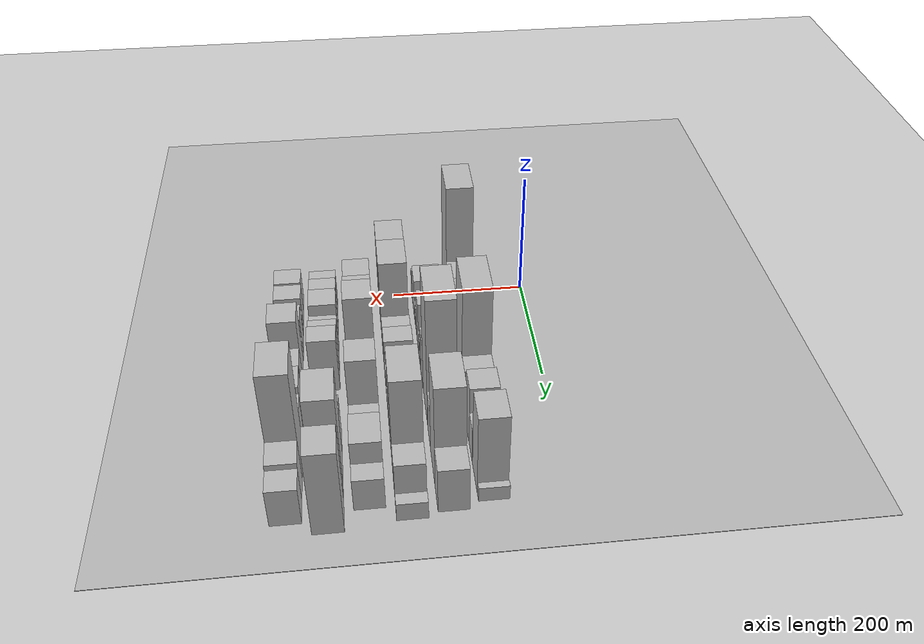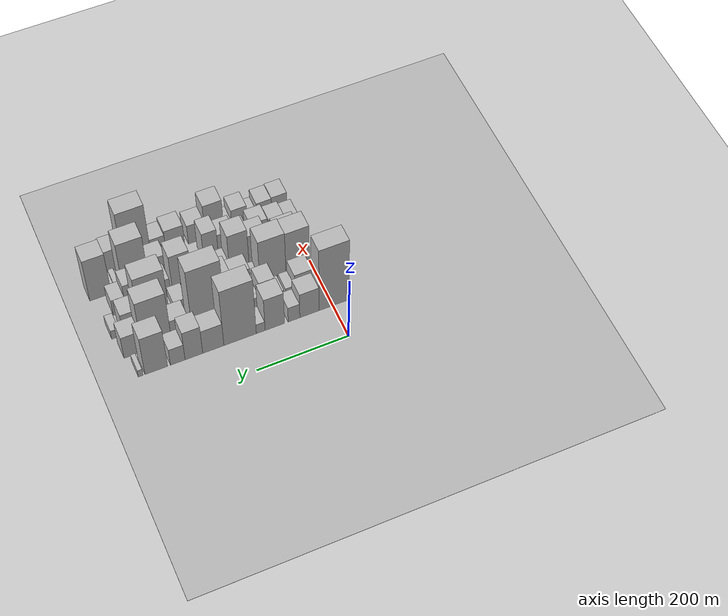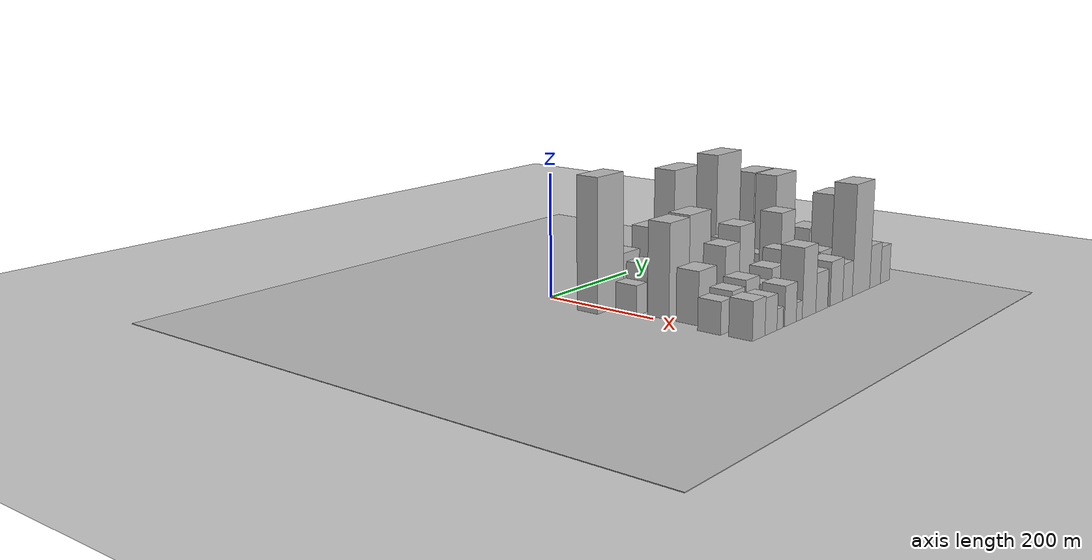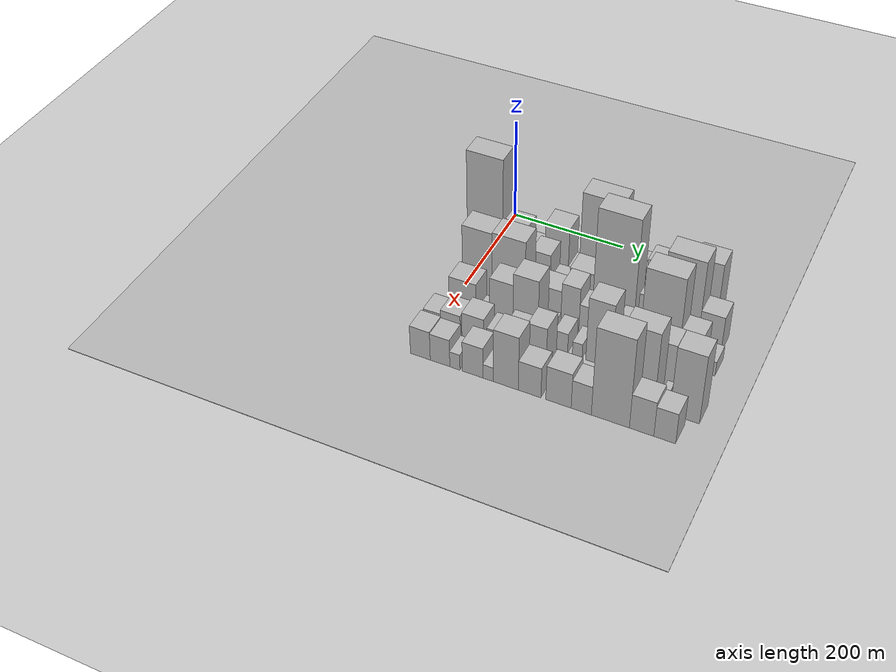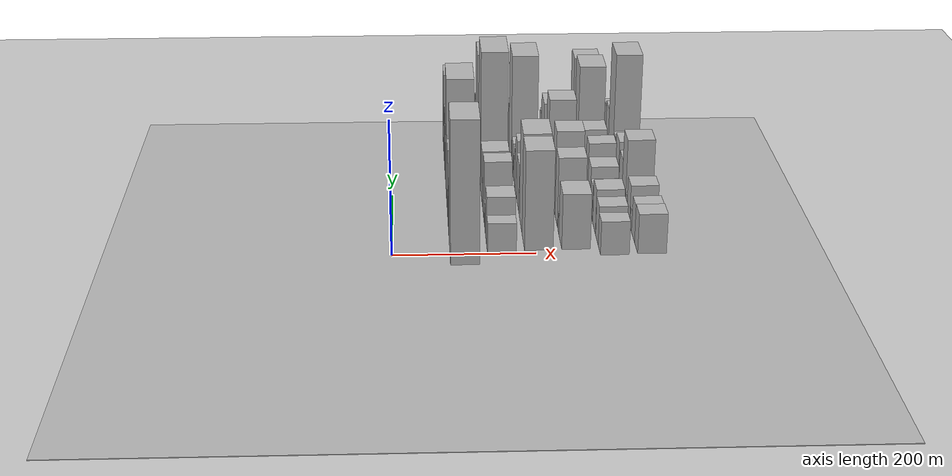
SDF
<sdf version="1.6">
 <world name="default">
  <include><name>ground_plane_1</name><uri>model://HANNAS_ground_plane</uri></include>
  <include>
   <name>ground_plane_2</name>
   <uri>model://HANNAS_ground_plane</uri>
   <pose>100 0 0  0 0 0</pose>
  </include>
  <model name="building_23">
   <static>1</static>
   <pose>100.0000 -1.6300 0 0.000000 0.000000 0.000000</pose>
   <link name="link">
    <pose>0 0 106.50 0 0 0</pose>
    <collision name="collision"><geometry><box><size>40.0000 65.4329 213.0000</size></box></geometry></collision>
    <visual name="visual">
     <cast_shadows>0</cast_shadows>
     <geometry><box><size>40.0000 65.4329 213.0000</size></box></geometry>
     <material>
      <script>
       <uri>model://HANNAS_wall/materials/scripts</uri>
       <uri>model://HANNAS_wall/materials/textures</uri>
       <name>vrc/HANNAS_wall</name>
      </script>
     </material>
    </visual>
   </link>
  </model>
  <model name="building_24">
   <static>1</static>
   <pose>100.0000 52.3423 0 0.000000 0.000000 0.000000</pose>
   <link name="link">
    <pose>0 0 42.00 0 0 0</pose>
    <collision name="collision"><geometry><box><size>40.0000 42.5116 84.0000</size></box></geometry></collision>
    <visual name="visual">
     <cast_shadows>0</cast_shadows>
     <geometry><box><size>40.0000 42.5116 84.0000</size></box></geometry>
     <material>
      <script>
       <uri>model://HANNAS_wall/materials/scripts</uri>
       <uri>model://HANNAS_wall/materials/textures</uri>
       <name>vrc/HANNAS_wall</name>
      </script>
     </material>
    </visual>
   </link>
  </model>
  <model name="building_25">
   <static>1</static>
   <pose>100.0000 86.3968 0 0.000000 0.000000 0.000000</pose>
   <link name="link">
    <pose>0 0 25.50 0 0 0</pose>
    <collision name="collision"><geometry><box><size>40.0000 25.5975 51.0000</size></box></geometry></collision>
    <visual name="visual">
     <cast_shadows>0</cast_shadows>
     <geometry><box><size>40.0000 25.5975 51.0000</size></box></geometry>
     <material>
      <script>
       <uri>model://HANNAS_wall/materials/scripts</uri>
       <uri>model://HANNAS_wall/materials/textures</uri>
       <name>vrc/HANNAS_wall</name>
      </script>
     </material>
    </visual>
   </link>
  </model>
  <model name="building_26">
   <static>1</static>
   <pose>100.0000 128.4170 0 0.000000 0.000000 0.000000</pose>
   <link name="link">
    <pose>0 0 55.50 0 0 0</pose>
    <collision name="collision"><geometry><box><size>40.0000 42.4429 111.0000</size></box></geometry></collision>
    <visual name="visual">
     <cast_shadows>0</cast_shadows>
     <geometry><box><size>40.0000 42.4429 111.0000</size></box></geometry>
     <material>
      <script>
       <uri>model://HANNAS_wall/materials/scripts</uri>
       <uri>model://HANNAS_wall/materials/textures</uri>
       <name>vrc/HANNAS_wall</name>
      </script>
     </material>
    </visual>
   </link>
  </model>
  <model name="building_27">
   <static>1</static>
   <pose>100.0000 159.2440 0 0.000000 0.000000 0.000000</pose>
   <link name="link">
    <pose>0 0 16.50 0 0 0</pose>
    <collision name="collision"><geometry><box><size>40.0000 19.2112 33.0000</size></box></geometry></collision>
    <visual name="visual">
     <cast_shadows>0</cast_shadows>
     <geometry><box><size>40.0000 19.2112 33.0000</size></box></geometry>
     <material>
      <script>
       <uri>model://HANNAS_wall/materials/scripts</uri>
       <uri>model://HANNAS_wall/materials/textures</uri>
       <name>vrc/HANNAS_wall</name>
      </script>
     </material>
    </visual>
   </link>
  </model>
  <model name="building_28">
   <static>1</static>
   <pose>100.0000 203.8309 0 0.000000 0.000000 0.000000</pose>
   <link name="link">
    <pose>0 0 97.50 0 0 0</pose>
    <collision name="collision"><geometry><box><size>40.0000 69.9627 195.0000</size></box></geometry></collision>
    <visual name="visual">
     <cast_shadows>0</cast_shadows>
     <geometry><box><size>40.0000 69.9627 195.0000</size></box></geometry>
     <material>
      <script>
       <uri>model://HANNAS_wall/materials/scripts</uri>
       <uri>model://HANNAS_wall/materials/textures</uri>
       <name>vrc/HANNAS_wall</name>
      </script>
     </material>
    </visual>
   </link>
  </model>
  <model name="building_29">
   <static>1</static>
   <pose>100.0000 261.5322 0 0.000000 0.000000 0.000000</pose>
   <link name="link">
    <pose>0 0 40.50 0 0 0</pose>
    <collision name="collision"><geometry><box><size>40.0000 45.4399 81.0000</size></box></geometry></collision>
    <visual name="visual">
     <cast_shadows>0</cast_shadows>
     <geometry><box><size>40.0000 45.4399 81.0000</size></box></geometry>
     <material>
      <script>
       <uri>model://HANNAS_wall/materials/scripts</uri>
       <uri>model://HANNAS_wall/materials/textures</uri>
       <name>vrc/HANNAS_wall</name>
      </script>
     </material>
    </visual>
   </link>
  </model>
  <model name="building_30">
   <static>1</static>
   <pose>100.0000 303.1188 0 0.000000 0.000000 0.000000</pose>
   <link name="link">
    <pose>0 0 49.50 0 0 0</pose>
    <collision name="collision"><geometry><box><size>40.0000 37.7334 99.0000</size></box></geometry></collision>
    <visual name="visual">
     <cast_shadows>0</cast_shadows>
     <geometry><box><size>40.0000 37.7334 99.0000</size></box></geometry>
     <material>
      <script>
       <uri>model://HANNAS_wall/materials/scripts</uri>
       <uri>model://HANNAS_wall/materials/textures</uri>
       <name>vrc/HANNAS_wall</name>
      </script>
     </material>
    </visual>
   </link>
  </model>
  <model name="building_31">
   <static>1</static>
   <pose>100.0000 337.5328 0 0.000000 0.000000 0.000000</pose>
   <link name="link">
    <pose>0 0 28.50 0 0 0</pose>
    <collision name="collision"><geometry><box><size>40.0000 31.0945 57.0000</size></box></geometry></collision>
    <visual name="visual">
     <cast_shadows>0</cast_shadows>
     <geometry><box><size>40.0000 31.0945 57.0000</size></box></geometry>
     <material>
      <script>
       <uri>model://HANNAS_wall/materials/scripts</uri>
       <uri>model://HANNAS_wall/materials/textures</uri>
       <name>vrc/HANNAS_wall</name>
      </script>
     </material>
    </visual>
   </link>
  </model>
  <model name="building_32">
   <static>1</static>
   <pose>100.0000 383.0558 0 0.000000 0.000000 0.000000</pose>
   <link name="link">
    <pose>0 0 66.00 0 0 0</pose>
    <collision name="collision"><geometry><box><size>40.0000 47.9517 132.0000</size></box></geometry></collision>
    <visual name="visual">
     <cast_shadows>0</cast_shadows>
     <geometry><box><size>40.0000 47.9517 132.0000</size></box></geometry>
     <material>
      <script>
       <uri>model://HANNAS_wall/materials/scripts</uri>
       <uri>model://HANNAS_wall/materials/textures</uri>
       <name>vrc/HANNAS_wall</name>
      </script>
     </material>
    </visual>
   </link>
  </model>
  <model name="building_33">
   <static>1</static>
   <pose>100.0000 415.9658 0 0.000000 0.000000 0.000000</pose>
   <link name="link">
    <pose>0 0 12.00 0 0 0</pose>
    <collision name="collision"><geometry><box><size>40.0000 9.8683 24.0000</size></box></geometry></collision>
    <visual name="visual">
     <cast_shadows>0</cast_shadows>
     <geometry><box><size>40.0000 9.8683 24.0000</size></box></geometry>
     <material>
      <script>
       <uri>model://HANNAS_wall/materials/scripts</uri>
       <uri>model://HANNAS_wall/materials/textures</uri>
       <name>vrc/HANNAS_wall</name>
      </script>
     </material>
    </visual>
   </link>
  </model>
  <model name="building_68">
   <static>1</static>
   <pose>152.0000 9.2155 0 0.000000 0.000000 0.000000</pose>
   <link name="link">
    <pose>0 0 24.00 0 0 0</pose>
    <collision name="collision"><geometry><box><size>40.0000 27.9302 48.0000</size></box></geometry></collision>
    <visual name="visual">
     <cast_shadows>0</cast_shadows>
     <geometry><box><size>40.0000 27.9302 48.0000</size></box></geometry>
     <material>
      <script>
       <uri>model://HANNAS_wall/materials/scripts</uri>
       <uri>model://HANNAS_wall/materials/textures</uri>
       <name>vrc/HANNAS_wall</name>
      </script>
     </material>
    </visual>
   </link>
  </model>
  <model name="building_69">
   <static>1</static>
   <pose>152.0000 42.9285 0 0.000000 0.000000 0.000000</pose>
   <link name="link">
    <pose>0 0 37.50 0 0 0</pose>
    <collision name="collision"><geometry><box><size>40.0000 39.4956 75.0000</size></box></geometry></collision>
    <visual name="visual">
     <cast_shadows>0</cast_shadows>
     <geometry><box><size>40.0000 39.4956 75.0000</size></box></geometry>
     <material>
      <script>
       <uri>model://HANNAS_wall/materials/scripts</uri>
       <uri>model://HANNAS_wall/materials/textures</uri>
       <name>vrc/HANNAS_wall</name>
      </script>
     </material>
    </visual>
   </link>
  </model>
  <model name="building_70">
   <static>1</static>
   <pose>152.0000 72.7786 0 0.000000 0.000000 0.000000</pose>
   <link name="link">
    <pose>0 0 19.50 0 0 0</pose>
    <collision name="collision"><geometry><box><size>40.0000 20.2046 39.0000</size></box></geometry></collision>
    <visual name="visual">
     <cast_shadows>0</cast_shadows>
     <geometry><box><size>40.0000 20.2046 39.0000</size></box></geometry>
     <material>
      <script>
       <uri>model://HANNAS_wall/materials/scripts</uri>
       <uri>model://HANNAS_wall/materials/textures</uri>
       <name>vrc/HANNAS_wall</name>
      </script>
     </material>
    </visual>
   </link>
  </model>
  <model name="building_71">
   <static>1</static>
   <pose>152.0000 95.4151 0 0.000000 0.000000 0.000000</pose>
   <link name="link">
    <pose>0 0 18.00 0 0 0</pose>
    <collision name="collision"><geometry><box><size>40.0000 19.0684 36.0000</size></box></geometry></collision>
    <visual name="visual">
     <cast_shadows>0</cast_shadows>
     <geometry><box><size>40.0000 19.0684 36.0000</size></box></geometry>
     <material>
      <script>
       <uri>model://HANNAS_wall/materials/scripts</uri>
       <uri>model://HANNAS_wall/materials/textures</uri>
       <name>vrc/HANNAS_wall</name>
      </script>
     </material>
    </visual>
   </link>
  </model>
  <model name="building_72">
   <static>1</static>
   <pose>152.0000 122.2607 0 0.000000 0.000000 0.000000</pose>
   <link name="link">
    <pose>0 0 46.50 0 0 0</pose>
    <collision name="collision"><geometry><box><size>40.0000 34.6228 93.0000</size></box></geometry></collision>
    <visual name="visual">
     <cast_shadows>0</cast_shadows>
     <geometry><box><size>40.0000 34.6228 93.0000</size></box></geometry>
     <material>
      <script>
       <uri>model://HANNAS_wall/materials/scripts</uri>
       <uri>model://HANNAS_wall/materials/textures</uri>
       <name>vrc/HANNAS_wall</name>
      </script>
     </material>
    </visual>
   </link>
  </model>
  <model name="building_73">
   <static>1</static>
   <pose>152.0000 151.7682 0 0.000000 0.000000 0.000000</pose>
   <link name="link">
    <pose>0 0 22.50 0 0 0</pose>
    <collision name="collision"><geometry><box><size>40.0000 24.3922 45.0000</size></box></geometry></collision>
    <visual name="visual">
     <cast_shadows>0</cast_shadows>
     <geometry><box><size>40.0000 24.3922 45.0000</size></box></geometry>
     <material>
      <script>
       <uri>model://HANNAS_wall/materials/scripts</uri>
       <uri>model://HANNAS_wall/materials/textures</uri>
       <name>vrc/HANNAS_wall</name>
      </script>
     </material>
    </visual>
   </link>
  </model>
  <model name="building_74">
   <static>1</static>
   <pose>152.0000 193.7684 0 0.000000 0.000000 0.000000</pose>
   <link name="link">
    <pose>0 0 40.50 0 0 0</pose>
    <collision name="collision"><geometry><box><size>40.0000 41.6083 81.0000</size></box></geometry></collision>
    <visual name="visual">
     <cast_shadows>0</cast_shadows>
     <geometry><box><size>40.0000 41.6083 81.0000</size></box></geometry>
     <material>
      <script>
       <uri>model://HANNAS_wall/materials/scripts</uri>
       <uri>model://HANNAS_wall/materials/textures</uri>
       <name>vrc/HANNAS_wall</name>
      </script>
     </material>
    </visual>
   </link>
  </model>
  <model name="building_75">
   <static>1</static>
   <pose>152.0000 250.3038 0 0.000000 0.000000 0.000000</pose>
   <link name="link">
    <pose>0 0 109.50 0 0 0</pose>
    <collision name="collision"><geometry><box><size>40.0000 71.4624 219.0000</size></box></geometry></collision>
    <visual name="visual">
     <cast_shadows>0</cast_shadows>
     <geometry><box><size>40.0000 71.4624 219.0000</size></box></geometry>
     <material>
      <script>
       <uri>model://HANNAS_wall/materials/scripts</uri>
       <uri>model://HANNAS_wall/materials/textures</uri>
       <name>vrc/HANNAS_wall</name>
      </script>
     </material>
    </visual>
   </link>
  </model>
  <model name="building_76">
   <static>1</static>
   <pose>152.0000 311.4444 0 0.000000 0.000000 0.000000</pose>
   <link name="link">
    <pose>0 0 36.00 0 0 0</pose>
    <collision name="collision"><geometry><box><size>40.0000 38.8188 72.0000</size></box></geometry></collision>
    <visual name="visual">
     <cast_shadows>0</cast_shadows>
     <geometry><box><size>40.0000 38.8188 72.0000</size></box></geometry>
     <material>
      <script>
       <uri>model://HANNAS_wall/materials/scripts</uri>
       <uri>model://HANNAS_wall/materials/textures</uri>
       <name>vrc/HANNAS_wall</name>
      </script>
     </material>
    </visual>
   </link>
  </model>
  <model name="building_77">
   <static>1</static>
   <pose>152.0000 362.1558 0 0.000000 0.000000 0.000000</pose>
   <link name="link">
    <pose>0 0 87.00 0 0 0</pose>
    <collision name="collision"><geometry><box><size>40.0000 62.6039 174.0000</size></box></geometry></collision>
    <visual name="visual">
     <cast_shadows>0</cast_shadows>
     <geometry><box><size>40.0000 62.6039 174.0000</size></box></geometry>
     <material>
      <script>
       <uri>model://HANNAS_wall/materials/scripts</uri>
       <uri>model://HANNAS_wall/materials/textures</uri>
       <name>vrc/HANNAS_wall</name>
      </script>
     </material>
    </visual>
   </link>
  </model>
  <model name="building_78">
   <static>1</static>
   <pose>152.0000 412.8408 0 0.000000 0.000000 0.000000</pose>
   <link name="link">
    <pose>0 0 37.50 0 0 0</pose>
    <collision name="collision"><geometry><box><size>40.0000 38.7662 75.0000</size></box></geometry></collision>
    <visual name="visual">
     <cast_shadows>0</cast_shadows>
     <geometry><box><size>40.0000 38.7662 75.0000</size></box></geometry>
     <material>
      <script>
       <uri>model://HANNAS_wall/materials/scripts</uri>
       <uri>model://HANNAS_wall/materials/textures</uri>
       <name>vrc/HANNAS_wall</name>
      </script>
     </material>
    </visual>
   </link>
  </model>
  <model name="building_116">
   <static>1</static>
   <pose>204.0000 33.9878 0 0.000000 0.000000 0.000000</pose>
   <link name="link">
    <pose>0 0 75.00 0 0 0</pose>
    <collision name="collision"><geometry><box><size>40.0000 52.7865 150.0000</size></box></geometry></collision>
    <visual name="visual">
     <cast_shadows>0</cast_shadows>
     <geometry><box><size>40.0000 52.7865 150.0000</size></box></geometry>
     <material>
      <script>
       <uri>model://HANNAS_wall/materials/scripts</uri>
       <uri>model://HANNAS_wall/materials/textures</uri>
       <name>vrc/HANNAS_wall</name>
      </script>
     </material>
    </visual>
   </link>
  </model>
  <model name="building_117">
   <static>1</static>
   <pose>204.0000 89.3117 0 0.000000 0.000000 0.000000</pose>
   <link name="link">
    <pose>0 0 76.50 0 0 0</pose>
    <collision name="collision"><geometry><box><size>40.0000 57.8612 153.0000</size></box></geometry></collision>
    <visual name="visual">
     <cast_shadows>0</cast_shadows>
     <geometry><box><size>40.0000 57.8612 153.0000</size></box></geometry>
     <material>
      <script>
       <uri>model://HANNAS_wall/materials/scripts</uri>
       <uri>model://HANNAS_wall/materials/textures</uri>
       <name>vrc/HANNAS_wall</name>
      </script>
     </material>
    </visual>
   </link>
  </model>
  <model name="building_118">
   <static>1</static>
   <pose>204.0000 127.9586 0 0.000000 0.000000 0.000000</pose>
   <link name="link">
    <pose>0 0 18.00 0 0 0</pose>
    <collision name="collision"><geometry><box><size>40.0000 19.4326 36.0000</size></box></geometry></collision>
    <visual name="visual">
     <cast_shadows>0</cast_shadows>
     <geometry><box><size>40.0000 19.4326 36.0000</size></box></geometry>
     <material>
      <script>
       <uri>model://HANNAS_wall/materials/scripts</uri>
       <uri>model://HANNAS_wall/materials/textures</uri>
       <name>vrc/HANNAS_wall</name>
      </script>
     </material>
    </visual>
   </link>
  </model>
  <model name="building_119">
   <static>1</static>
   <pose>204.0000 159.4800 0 0.000000 0.000000 0.000000</pose>
   <link name="link">
    <pose>0 0 37.50 0 0 0</pose>
    <collision name="collision"><geometry><box><size>40.0000 43.6103 75.0000</size></box></geometry></collision>
    <visual name="visual">
     <cast_shadows>0</cast_shadows>
     <geometry><box><size>40.0000 43.6103 75.0000</size></box></geometry>
     <material>
      <script>
       <uri>model://HANNAS_wall/materials/scripts</uri>
       <uri>model://HANNAS_wall/materials/textures</uri>
       <name>vrc/HANNAS_wall</name>
      </script>
     </material>
    </visual>
   </link>
  </model>
  <model name="building_120">
   <static>1</static>
   <pose>204.0000 196.9815 0 0.000000 0.000000 0.000000</pose>
   <link name="link">
    <pose>0 0 46.50 0 0 0</pose>
    <collision name="collision"><geometry><box><size>40.0000 31.3926 93.0000</size></box></geometry></collision>
    <visual name="visual">
     <cast_shadows>0</cast_shadows>
     <geometry><box><size>40.0000 31.3926 93.0000</size></box></geometry>
     <material>
      <script>
       <uri>model://HANNAS_wall/materials/scripts</uri>
       <uri>model://HANNAS_wall/materials/textures</uri>
       <name>vrc/HANNAS_wall</name>
      </script>
     </material>
    </visual>
   </link>
  </model>
  <model name="building_121">
   <static>1</static>
   <pose>204.0000 228.0705 0 0.000000 0.000000 0.000000</pose>
   <link name="link">
    <pose>0 0 30.00 0 0 0</pose>
    <collision name="collision"><geometry><box><size>40.0000 30.7855 60.0000</size></box></geometry></collision>
    <visual name="visual">
     <cast_shadows>0</cast_shadows>
     <geometry><box><size>40.0000 30.7855 60.0000</size></box></geometry>
     <material>
      <script>
       <uri>model://HANNAS_wall/materials/scripts</uri>
       <uri>model://HANNAS_wall/materials/textures</uri>
       <name>vrc/HANNAS_wall</name>
      </script>
     </material>
    </visual>
   </link>
  </model>
  <model name="building_122">
   <static>1</static>
   <pose>204.0000 254.6792 0 0.000000 0.000000 0.000000</pose>
   <link name="link">
    <pose>0 0 19.50 0 0 0</pose>
    <collision name="collision"><geometry><box><size>40.0000 22.4319 39.0000</size></box></geometry></collision>
    <visual name="visual">
     <cast_shadows>0</cast_shadows>
     <geometry><box><size>40.0000 22.4319 39.0000</size></box></geometry>
     <material>
      <script>
       <uri>model://HANNAS_wall/materials/scripts</uri>
       <uri>model://HANNAS_wall/materials/textures</uri>
       <name>vrc/HANNAS_wall</name>
      </script>
     </material>
    </visual>
   </link>
  </model>
  <model name="building_123">
   <static>1</static>
   <pose>204.0000 270.3292 0 0.000000 0.000000 0.000000</pose>
   <link name="link">
    <pose>0 0 9.00 0 0 0</pose>
    <collision name="collision"><geometry><box><size>40.0000 8.8683 18.0000</size></box></geometry></collision>
    <visual name="visual">
     <cast_shadows>0</cast_shadows>
     <geometry><box><size>40.0000 8.8683 18.0000</size></box></geometry>
     <material>
      <script>
       <uri>model://HANNAS_wall/materials/scripts</uri>
       <uri>model://HANNAS_wall/materials/textures</uri>
       <name>vrc/HANNAS_wall</name>
      </script>
     </material>
    </visual>
   </link>
  </model>
  <model name="building_124">
   <static>1</static>
   <pose>204.0000 289.6165 0 0.000000 0.000000 0.000000</pose>
   <link name="link">
    <pose>0 0 25.50 0 0 0</pose>
    <collision name="collision"><geometry><box><size>40.0000 29.7063 51.0000</size></box></geometry></collision>
    <visual name="visual">
     <cast_shadows>0</cast_shadows>
     <geometry><box><size>40.0000 29.7063 51.0000</size></box></geometry>
     <material>
      <script>
       <uri>model://HANNAS_wall/materials/scripts</uri>
       <uri>model://HANNAS_wall/materials/textures</uri>
       <name>vrc/HANNAS_wall</name>
      </script>
     </material>
    </visual>
   </link>
  </model>
  <model name="building_125">
   <static>1</static>
   <pose>204.0000 309.6186 0 0.000000 0.000000 0.000000</pose>
   <link name="link">
    <pose>0 0 12.00 0 0 0</pose>
    <collision name="collision"><geometry><box><size>40.0000 10.2978 24.0000</size></box></geometry></collision>
    <visual name="visual">
     <cast_shadows>0</cast_shadows>
     <geometry><box><size>40.0000 10.2978 24.0000</size></box></geometry>
     <material>
      <script>
       <uri>model://HANNAS_wall/materials/scripts</uri>
       <uri>model://HANNAS_wall/materials/textures</uri>
       <name>vrc/HANNAS_wall</name>
      </script>
     </material>
    </visual>
   </link>
  </model>
  <model name="building_126">
   <static>1</static>
   <pose>204.0000 346.9822 0 0.000000 0.000000 0.000000</pose>
   <link name="link">
    <pose>0 0 88.50 0 0 0</pose>
    <collision name="collision"><geometry><box><size>40.0000 64.4294 177.0000</size></box></geometry></collision>
    <visual name="visual">
     <cast_shadows>0</cast_shadows>
     <geometry><box><size>40.0000 64.4294 177.0000</size></box></geometry>
     <material>
      <script>
       <uri>model://HANNAS_wall/materials/scripts</uri>
       <uri>model://HANNAS_wall/materials/textures</uri>
       <name>vrc/HANNAS_wall</name>
      </script>
     </material>
    </visual>
   </link>
  </model>
  <model name="building_127">
   <static>1</static>
   <pose>204.0000 397.3503 0 0.000000 0.000000 0.000000</pose>
   <link name="link">
    <pose>0 0 36.00 0 0 0</pose>
    <collision name="collision"><geometry><box><size>40.0000 36.3067 72.0000</size></box></geometry></collision>
    <visual name="visual">
     <cast_shadows>0</cast_shadows>
     <geometry><box><size>40.0000 36.3067 72.0000</size></box></geometry>
     <material>
      <script>
       <uri>model://HANNAS_wall/materials/scripts</uri>
       <uri>model://HANNAS_wall/materials/textures</uri>
       <name>vrc/HANNAS_wall</name>
      </script>
     </material>
    </visual>
   </link>
  </model>
  <model name="building_128">
   <static>1</static>
   <pose>204.0000 431.2287 0 0.000000 0.000000 0.000000</pose>
   <link name="link">
    <pose>0 0 15.00 0 0 0</pose>
    <collision name="collision"><geometry><box><size>40.0000 17.4501 30.0000</size></box></geometry></collision>
    <visual name="visual">
     <cast_shadows>0</cast_shadows>
     <geometry><box><size>40.0000 17.4501 30.0000</size></box></geometry>
     <material>
      <script>
       <uri>model://HANNAS_wall/materials/scripts</uri>
       <uri>model://HANNAS_wall/materials/textures</uri>
       <name>vrc/HANNAS_wall</name>
      </script>
     </material>
    </visual>
   </link>
  </model>
  <model name="building_161">
   <static>1</static>
   <pose>256.0000 32.8199 0 0.000000 0.000000 0.000000</pose>
   <link name="link">
    <pose>0 0 42.00 0 0 0</pose>
    <collision name="collision"><geometry><box><size>40.0000 47.6721 84.0000</size></box></geometry></collision>
    <visual name="visual">
     <cast_shadows>0</cast_shadows>
     <geometry><box><size>40.0000 47.6721 84.0000</size></box></geometry>
     <material>
      <script>
       <uri>model://HANNAS_wall/materials/scripts</uri>
       <uri>model://HANNAS_wall/materials/textures</uri>
       <name>vrc/HANNAS_wall</name>
      </script>
     </material>
    </visual>
   </link>
  </model>
  <model name="building_162">
   <static>1</static>
   <pose>256.0000 64.5256 0 0.000000 0.000000 0.000000</pose>
   <link name="link">
    <pose>0 0 15.00 0 0 0</pose>
    <collision name="collision"><geometry><box><size>40.0000 15.7392 30.0000</size></box></geometry></collision>
    <visual name="visual">
     <cast_shadows>0</cast_shadows>
     <geometry><box><size>40.0000 15.7392 30.0000</size></box></geometry>
     <material>
      <script>
       <uri>model://HANNAS_wall/materials/scripts</uri>
       <uri>model://HANNAS_wall/materials/textures</uri>
       <name>vrc/HANNAS_wall</name>
      </script>
     </material>
    </visual>
   </link>
  </model>
  <model name="building_163">
   <static>1</static>
   <pose>256.0000 100.6425 0 0.000000 0.000000 0.000000</pose>
   <link name="link">
    <pose>0 0 54.00 0 0 0</pose>
    <collision name="collision"><geometry><box><size>40.0000 40.4947 108.0000</size></box></geometry></collision>
    <visual name="visual">
     <cast_shadows>0</cast_shadows>
     <geometry><box><size>40.0000 40.4947 108.0000</size></box></geometry>
     <material>
      <script>
       <uri>model://HANNAS_wall/materials/scripts</uri>
       <uri>model://HANNAS_wall/materials/textures</uri>
       <name>vrc/HANNAS_wall</name>
      </script>
     </material>
    </visual>
   </link>
  </model>
  <model name="building_164">
   <static>1</static>
   <pose>256.0000 142.4848 0 0.000000 0.000000 0.000000</pose>
   <link name="link">
    <pose>0 0 66.00 0 0 0</pose>
    <collision name="collision"><geometry><box><size>40.0000 43.1898 132.0000</size></box></geometry></collision>
    <visual name="visual">
     <cast_shadows>0</cast_shadows>
     <geometry><box><size>40.0000 43.1898 132.0000</size></box></geometry>
     <material>
      <script>
       <uri>model://HANNAS_wall/materials/scripts</uri>
       <uri>model://HANNAS_wall/materials/textures</uri>
       <name>vrc/HANNAS_wall</name>
      </script>
     </material>
    </visual>
   </link>
  </model>
  <model name="building_165">
   <static>1</static>
   <pose>256.0000 175.1293 0 0.000000 0.000000 0.000000</pose>
   <link name="link">
    <pose>0 0 21.00 0 0 0</pose>
    <collision name="collision"><geometry><box><size>40.0000 22.0991 42.0000</size></box></geometry></collision>
    <visual name="visual">
     <cast_shadows>0</cast_shadows>
     <geometry><box><size>40.0000 22.0991 42.0000</size></box></geometry>
     <material>
      <script>
       <uri>model://HANNAS_wall/materials/scripts</uri>
       <uri>model://HANNAS_wall/materials/textures</uri>
       <name>vrc/HANNAS_wall</name>
      </script>
     </material>
    </visual>
   </link>
  </model>
  <model name="building_166">
   <static>1</static>
   <pose>256.0000 203.7704 0 0.000000 0.000000 0.000000</pose>
   <link name="link">
    <pose>0 0 21.00 0 0 0</pose>
    <collision name="collision"><geometry><box><size>40.0000 23.1833 42.0000</size></box></geometry></collision>
    <visual name="visual">
     <cast_shadows>0</cast_shadows>
     <geometry><box><size>40.0000 23.1833 42.0000</size></box></geometry>
     <material>
      <script>
       <uri>model://HANNAS_wall/materials/scripts</uri>
       <uri>model://HANNAS_wall/materials/textures</uri>
       <name>vrc/HANNAS_wall</name>
      </script>
     </material>
    </visual>
   </link>
  </model>
  <model name="building_167">
   <static>1</static>
   <pose>256.0000 231.7133 0 0.000000 0.000000 0.000000</pose>
   <link name="link">
    <pose>0 0 15.00 0 0 0</pose>
    <collision name="collision"><geometry><box><size>40.0000 16.7024 30.0000</size></box></geometry></collision>
    <visual name="visual">
     <cast_shadows>0</cast_shadows>
     <geometry><box><size>40.0000 16.7024 30.0000</size></box></geometry>
     <material>
      <script>
       <uri>model://HANNAS_wall/materials/scripts</uri>
       <uri>model://HANNAS_wall/materials/textures</uri>
       <name>vrc/HANNAS_wall</name>
      </script>
     </material>
    </visual>
   </link>
  </model>
  <model name="building_168">
   <static>1</static>
   <pose>256.0000 267.4576 0 0.000000 0.000000 0.000000</pose>
   <link name="link">
    <pose>0 0 66.00 0 0 0</pose>
    <collision name="collision"><geometry><box><size>40.0000 42.7861 132.0000</size></box></geometry></collision>
    <visual name="visual">
     <cast_shadows>0</cast_shadows>
     <geometry><box><size>40.0000 42.7861 132.0000</size></box></geometry>
     <material>
      <script>
       <uri>model://HANNAS_wall/materials/scripts</uri>
       <uri>model://HANNAS_wall/materials/textures</uri>
       <name>vrc/HANNAS_wall</name>
      </script>
     </material>
    </visual>
   </link>
  </model>
  <model name="building_169">
   <static>1</static>
   <pose>256.0000 308.0665 0 0.000000 0.000000 0.000000</pose>
   <link name="link">
    <pose>0 0 30.00 0 0 0</pose>
    <collision name="collision"><geometry><box><size>40.0000 30.4317 60.0000</size></box></geometry></collision>
    <visual name="visual">
     <cast_shadows>0</cast_shadows>
     <geometry><box><size>40.0000 30.4317 60.0000</size></box></geometry>
     <material>
      <script>
       <uri>model://HANNAS_wall/materials/scripts</uri>
       <uri>model://HANNAS_wall/materials/textures</uri>
       <name>vrc/HANNAS_wall</name>
      </script>
     </material>
    </visual>
   </link>
  </model>
  <model name="building_170">
   <static>1</static>
   <pose>256.0000 327.1682 0 0.000000 0.000000 0.000000</pose>
   <link name="link">
    <pose>0 0 9.00 0 0 0</pose>
    <collision name="collision"><geometry><box><size>40.0000 7.7718 18.0000</size></box></geometry></collision>
    <visual name="visual">
     <cast_shadows>0</cast_shadows>
     <geometry><box><size>40.0000 7.7718 18.0000</size></box></geometry>
     <material>
      <script>
       <uri>model://HANNAS_wall/materials/scripts</uri>
       <uri>model://HANNAS_wall/materials/textures</uri>
       <name>vrc/HANNAS_wall</name>
      </script>
     </material>
    </visual>
   </link>
  </model>
  <model name="building_171">
   <static>1</static>
   <pose>256.0000 364.6191 0 0.000000 0.000000 0.000000</pose>
   <link name="link">
    <pose>0 0 45.00 0 0 0</pose>
    <collision name="collision"><geometry><box><size>40.0000 51.1301 90.0000</size></box></geometry></collision>
    <visual name="visual">
     <cast_shadows>0</cast_shadows>
     <geometry><box><size>40.0000 51.1301 90.0000</size></box></geometry>
     <material>
      <script>
       <uri>model://HANNAS_wall/materials/scripts</uri>
       <uri>model://HANNAS_wall/materials/textures</uri>
       <name>vrc/HANNAS_wall</name>
      </script>
     </material>
    </visual>
   </link>
  </model>
  <model name="building_172">
   <static>1</static>
   <pose>256.0000 404.0965 0 0.000000 0.000000 0.000000</pose>
   <link name="link">
    <pose>0 0 27.00 0 0 0</pose>
    <collision name="collision"><geometry><box><size>40.0000 27.8247 54.0000</size></box></geometry></collision>
    <visual name="visual">
     <cast_shadows>0</cast_shadows>
     <geometry><box><size>40.0000 27.8247 54.0000</size></box></geometry>
     <material>
      <script>
       <uri>model://HANNAS_wall/materials/scripts</uri>
       <uri>model://HANNAS_wall/materials/textures</uri>
       <name>vrc/HANNAS_wall</name>
      </script>
     </material>
    </visual>
   </link>
  </model>
  <model name="building_214">
   <static>1</static>
   <pose>308.0000 4.7092 0 0.000000 0.000000 0.000000</pose>
   <link name="link">
    <pose>0 0 25.50 0 0 0</pose>
    <collision name="collision"><geometry><box><size>40.0000 30.4327 51.0000</size></box></geometry></collision>
    <visual name="visual">
     <cast_shadows>0</cast_shadows>
     <geometry><box><size>40.0000 30.4327 51.0000</size></box></geometry>
     <material>
      <script>
       <uri>model://HANNAS_wall/materials/scripts</uri>
       <uri>model://HANNAS_wall/materials/textures</uri>
       <name>vrc/HANNAS_wall</name>
      </script>
     </material>
    </visual>
   </link>
  </model>
  <model name="building_215">
   <static>1</static>
   <pose>308.0000 36.9618 0 0.000000 0.000000 0.000000</pose>
   <link name="link">
    <pose>0 0 30.00 0 0 0</pose>
    <collision name="collision"><geometry><box><size>40.0000 34.0726 60.0000</size></box></geometry></collision>
    <visual name="visual">
     <cast_shadows>0</cast_shadows>
     <geometry><box><size>40.0000 34.0726 60.0000</size></box></geometry>
     <material>
      <script>
       <uri>model://HANNAS_wall/materials/scripts</uri>
       <uri>model://HANNAS_wall/materials/textures</uri>
       <name>vrc/HANNAS_wall</name>
      </script>
     </material>
    </visual>
   </link>
  </model>
  <model name="building_216">
   <static>1</static>
   <pose>308.0000 76.0015 0 0.000000 0.000000 0.000000</pose>
   <link name="link">
    <pose>0 0 34.50 0 0 0</pose>
    <collision name="collision"><geometry><box><size>40.0000 38.0069 69.0000</size></box></geometry></collision>
    <visual name="visual">
     <cast_shadows>0</cast_shadows>
     <geometry><box><size>40.0000 38.0069 69.0000</size></box></geometry>
     <material>
      <script>
       <uri>model://HANNAS_wall/materials/scripts</uri>
       <uri>model://HANNAS_wall/materials/textures</uri>
       <name>vrc/HANNAS_wall</name>
      </script>
     </material>
    </visual>
   </link>
  </model>
  <model name="building_217">
   <static>1</static>
   <pose>308.0000 115.4123 0 0.000000 0.000000 0.000000</pose>
   <link name="link">
    <pose>0 0 27.00 0 0 0</pose>
    <collision name="collision"><geometry><box><size>40.0000 30.8146 54.0000</size></box></geometry></collision>
    <visual name="visual">
     <cast_shadows>0</cast_shadows>
     <geometry><box><size>40.0000 30.8146 54.0000</size></box></geometry>
     <material>
      <script>
       <uri>model://HANNAS_wall/materials/scripts</uri>
       <uri>model://HANNAS_wall/materials/textures</uri>
       <name>vrc/HANNAS_wall</name>
      </script>
     </material>
    </visual>
   </link>
  </model>
  <model name="building_218">
   <static>1</static>
   <pose>308.0000 149.8188 0 0.000000 0.000000 0.000000</pose>
   <link name="link">
    <pose>0 0 36.00 0 0 0</pose>
    <collision name="collision"><geometry><box><size>40.0000 37.9983 72.0000</size></box></geometry></collision>
    <visual name="visual">
     <cast_shadows>0</cast_shadows>
     <geometry><box><size>40.0000 37.9983 72.0000</size></box></geometry>
     <material>
      <script>
       <uri>model://HANNAS_wall/materials/scripts</uri>
       <uri>model://HANNAS_wall/materials/textures</uri>
       <name>vrc/HANNAS_wall</name>
      </script>
     </material>
    </visual>
   </link>
  </model>
  <model name="building_219">
   <static>1</static>
   <pose>308.0000 185.0864 0 0.000000 0.000000 0.000000</pose>
   <link name="link">
    <pose>0 0 46.50 0 0 0</pose>
    <collision name="collision"><geometry><box><size>40.0000 32.5370 93.0000</size></box></geometry></collision>
    <visual name="visual">
     <cast_shadows>0</cast_shadows>
     <geometry><box><size>40.0000 32.5370 93.0000</size></box></geometry>
     <material>
      <script>
       <uri>model://HANNAS_wall/materials/scripts</uri>
       <uri>model://HANNAS_wall/materials/textures</uri>
       <name>vrc/HANNAS_wall</name>
      </script>
     </material>
    </visual>
   </link>
  </model>
  <model name="building_220">
   <static>1</static>
   <pose>308.0000 302.1632 0 0.000000 0.000000 0.000000</pose>
   <link name="link">
    <pose>0 0 34.50 0 0 0</pose>
    <collision name="collision"><geometry><box><size>40.0000 41.2055 69.0000</size></box></geometry></collision>
    <visual name="visual">
     <cast_shadows>0</cast_shadows>
     <geometry><box><size>40.0000 41.2055 69.0000</size></box></geometry>
     <material>
      <script>
       <uri>model://HANNAS_wall/materials/scripts</uri>
       <uri>model://HANNAS_wall/materials/textures</uri>
       <name>vrc/HANNAS_wall</name>
      </script>
     </material>
    </visual>
   </link>
  </model>
  <model name="building_221">
   <static>1</static>
   <pose>308.0000 350.7880 0 0.000000 0.000000 0.000000</pose>
   <link name="link">
    <pose>0 0 78.00 0 0 0</pose>
    <collision name="collision"><geometry><box><size>40.0000 56.0440 156.0000</size></box></geometry></collision>
    <visual name="visual">
     <cast_shadows>0</cast_shadows>
     <geometry><box><size>40.0000 56.0440 156.0000</size></box></geometry>
     <material>
      <script>
       <uri>model://HANNAS_wall/materials/scripts</uri>
       <uri>model://HANNAS_wall/materials/textures</uri>
       <name>vrc/HANNAS_wall</name>
      </script>
     </material>
    </visual>
   </link>
  </model>
  <model name="building_222">
   <static>1</static>
   <pose>308.0000 389.6211 0 0.000000 0.000000 0.000000</pose>
   <link name="link">
    <pose>0 0 13.50 0 0 0</pose>
    <collision name="collision"><geometry><box><size>40.0000 11.6223 27.0000</size></box></geometry></collision>
    <visual name="visual">
     <cast_shadows>0</cast_shadows>
     <geometry><box><size>40.0000 11.6223 27.0000</size></box></geometry>
     <material>
      <script>
       <uri>model://HANNAS_wall/materials/scripts</uri>
       <uri>model://HANNAS_wall/materials/textures</uri>
       <name>vrc/HANNAS_wall</name>
      </script>
     </material>
    </visual>
   </link>
  </model>
  <model name="building_223">
   <static>1</static>
   <pose>308.0000 399.6754 0 0.000000 0.000000 0.000000</pose>
   <link name="link">
    <pose>0 0 10.50 0 0 0</pose>
    <collision name="collision"><geometry><box><size>40.0000 8.4861 21.0000</size></box></geometry></collision>
    <visual name="visual">
     <cast_shadows>0</cast_shadows>
     <geometry><box><size>40.0000 8.4861 21.0000</size></box></geometry>
     <material>
      <script>
       <uri>model://HANNAS_wall/materials/scripts</uri>
       <uri>model://HANNAS_wall/materials/textures</uri>
       <name>vrc/HANNAS_wall</name>
      </script>
     </material>
    </visual>
   </link>
  </model>
  <model name="building_224">
   <static>1</static>
   <pose>308.0000 427.1143 0 0.000000 0.000000 0.000000</pose>
   <link name="link">
    <pose>0 0 70.50 0 0 0</pose>
    <collision name="collision"><geometry><box><size>40.0000 46.3917 141.0000</size></box></geometry></collision>
    <visual name="visual">
     <cast_shadows>0</cast_shadows>
     <geometry><box><size>40.0000 46.3917 141.0000</size></box></geometry>
     <material>
      <script>
       <uri>model://HANNAS_wall/materials/scripts</uri>
       <uri>model://HANNAS_wall/materials/textures</uri>
       <name>vrc/HANNAS_wall</name>
      </script>
     </material>
    </visual>
   </link>
  </model>
  <model name="building_261">
   <static>1</static>
   <pose>360.0000 9.8952 0 0.000000 0.000000 0.000000</pose>
   <link name="link">
    <pose>0 0 30.00 0 0 0</pose>
    <collision name="collision"><geometry><box><size>40.0000 34.7975 60.0000</size></box></geometry></collision>
    <visual name="visual">
     <cast_shadows>0</cast_shadows>
     <geometry><box><size>40.0000 34.7975 60.0000</size></box></geometry>
     <material>
      <script>
       <uri>model://HANNAS_wall/materials/scripts</uri>
       <uri>model://HANNAS_wall/materials/textures</uri>
       <name>vrc/HANNAS_wall</name>
      </script>
     </material>
    </visual>
   </link>
  </model>
  <model name="building_262">
   <static>1</static>
   <pose>360.0000 44.2582 0 0.000000 0.000000 0.000000</pose>
   <link name="link">
    <pose>0 0 28.50 0 0 0</pose>
    <collision name="collision"><geometry><box><size>40.0000 33.9285 57.0000</size></box></geometry></collision>
    <visual name="visual">
     <cast_shadows>0</cast_shadows>
     <geometry><box><size>40.0000 33.9285 57.0000</size></box></geometry>
     <material>
      <script>
       <uri>model://HANNAS_wall/materials/scripts</uri>
       <uri>model://HANNAS_wall/materials/textures</uri>
       <name>vrc/HANNAS_wall</name>
      </script>
     </material>
    </visual>
   </link>
  </model>
  <model name="building_263">
   <static>1</static>
   <pose>360.0000 70.0205 0 0.000000 0.000000 0.000000</pose>
   <link name="link">
    <pose>0 0 16.50 0 0 0</pose>
    <collision name="collision"><geometry><box><size>40.0000 17.5962 33.0000</size></box></geometry></collision>
    <visual name="visual">
     <cast_shadows>0</cast_shadows>
     <geometry><box><size>40.0000 17.5962 33.0000</size></box></geometry>
     <material>
      <script>
       <uri>model://HANNAS_wall/materials/scripts</uri>
       <uri>model://HANNAS_wall/materials/textures</uri>
       <name>vrc/HANNAS_wall</name>
      </script>
     </material>
    </visual>
   </link>
  </model>
  <model name="building_264">
   <static>1</static>
   <pose>360.0000 100.3466 0 0.000000 0.000000 0.000000</pose>
   <link name="link">
    <pose>0 0 31.50 0 0 0</pose>
    <collision name="collision"><geometry><box><size>40.0000 35.0559 63.0000</size></box></geometry></collision>
    <visual name="visual">
     <cast_shadows>0</cast_shadows>
     <geometry><box><size>40.0000 35.0559 63.0000</size></box></geometry>
     <material>
      <script>
       <uri>model://HANNAS_wall/materials/scripts</uri>
       <uri>model://HANNAS_wall/materials/textures</uri>
       <name>vrc/HANNAS_wall</name>
      </script>
     </material>
    </visual>
   </link>
  </model>
  <model name="building_265">
   <static>1</static>
   <pose>360.0000 126.8002 0 0.000000 0.000000 0.000000</pose>
   <link name="link">
    <pose>0 0 15.00 0 0 0</pose>
    <collision name="collision"><geometry><box><size>40.0000 17.8514 30.0000</size></box></geometry></collision>
    <visual name="visual">
     <cast_shadows>0</cast_shadows>
     <geometry><box><size>40.0000 17.8514 30.0000</size></box></geometry>
     <material>
      <script>
       <uri>model://HANNAS_wall/materials/scripts</uri>
       <uri>model://HANNAS_wall/materials/textures</uri>
       <name>vrc/HANNAS_wall</name>
      </script>
     </material>
    </visual>
   </link>
  </model>
  <model name="building_266">
   <static>1</static>
   <pose>360.0000 156.7765 0 0.000000 0.000000 0.000000</pose>
   <link name="link">
    <pose>0 0 55.50 0 0 0</pose>
    <collision name="collision"><geometry><box><size>40.0000 42.1011 111.0000</size></box></geometry></collision>
    <visual name="visual">
     <cast_shadows>0</cast_shadows>
     <geometry><box><size>40.0000 42.1011 111.0000</size></box></geometry>
     <material>
      <script>
       <uri>model://HANNAS_wall/materials/scripts</uri>
       <uri>model://HANNAS_wall/materials/textures</uri>
       <name>vrc/HANNAS_wall</name>
      </script>
     </material>
    </visual>
   </link>
  </model>
  <model name="building_267">
   <static>1</static>
   <pose>360.0000 196.6860 0 0.000000 0.000000 0.000000</pose>
   <link name="link">
    <pose>0 0 31.50 0 0 0</pose>
    <collision name="collision"><geometry><box><size>40.0000 37.7181 63.0000</size></box></geometry></collision>
    <visual name="visual">
     <cast_shadows>0</cast_shadows>
     <geometry><box><size>40.0000 37.7181 63.0000</size></box></geometry>
     <material>
      <script>
       <uri>model://HANNAS_wall/materials/scripts</uri>
       <uri>model://HANNAS_wall/materials/textures</uri>
       <name>vrc/HANNAS_wall</name>
      </script>
     </material>
    </visual>
   </link>
  </model>
  <model name="building_268">
   <static>1</static>
   <pose>360.0000 244.3908 0 0.000000 0.000000 0.000000</pose>
   <link name="link">
    <pose>0 0 36.00 0 0 0</pose>
    <collision name="collision"><geometry><box><size>40.0000 41.6915 72.0000</size></box></geometry></collision>
    <visual name="visual">
     <cast_shadows>0</cast_shadows>
     <geometry><box><size>40.0000 41.6915 72.0000</size></box></geometry>
     <material>
      <script>
       <uri>model://HANNAS_wall/materials/scripts</uri>
       <uri>model://HANNAS_wall/materials/textures</uri>
       <name>vrc/HANNAS_wall</name>
      </script>
     </material>
    </visual>
   </link>
  </model>
  <model name="building_269">
   <static>1</static>
   <pose>360.0000 281.5736 0 0.000000 0.000000 0.000000</pose>
   <link name="link">
    <pose>0 0 30.00 0 0 0</pose>
    <collision name="collision"><geometry><box><size>40.0000 32.6740 60.0000</size></box></geometry></collision>
    <visual name="visual">
     <cast_shadows>0</cast_shadows>
     <geometry><box><size>40.0000 32.6740 60.0000</size></box></geometry>
     <material>
      <script>
       <uri>model://HANNAS_wall/materials/scripts</uri>
       <uri>model://HANNAS_wall/materials/textures</uri>
       <name>vrc/HANNAS_wall</name>
      </script>
     </material>
    </visual>
   </link>
  </model>
  <model name="building_270">
   <static>1</static>
   <pose>360.0000 328.4286 0 0.000000 0.000000 0.000000</pose>
   <link name="link">
    <pose>0 0 91.50 0 0 0</pose>
    <collision name="collision"><geometry><box><size>40.0000 61.0359 183.0000</size></box></geometry></collision>
    <visual name="visual">
     <cast_shadows>0</cast_shadows>
     <geometry><box><size>40.0000 61.0359 183.0000</size></box></geometry>
     <material>
      <script>
       <uri>model://HANNAS_wall/materials/scripts</uri>
       <uri>model://HANNAS_wall/materials/textures</uri>
       <name>vrc/HANNAS_wall</name>
      </script>
     </material>
    </visual>
   </link>
  </model>
  <model name="building_271">
   <static>1</static>
   <pose>360.0000 378.2404 0 0.000000 0.000000 0.000000</pose>
   <link name="link">
    <pose>0 0 36.00 0 0 0</pose>
    <collision name="collision"><geometry><box><size>40.0000 38.5878 72.0000</size></box></geometry></collision>
    <visual name="visual">
     <cast_shadows>0</cast_shadows>
     <geometry><box><size>40.0000 38.5878 72.0000</size></box></geometry>
     <material>
      <script>
       <uri>model://HANNAS_wall/materials/scripts</uri>
       <uri>model://HANNAS_wall/materials/textures</uri>
       <name>vrc/HANNAS_wall</name>
      </script>
     </material>
    </visual>
   </link>
  </model>
  <model name="building_272">
   <static>1</static>
   <pose>360.0000 414.5561 0 0.000000 0.000000 0.000000</pose>
   <link name="link">
    <pose>0 0 31.50 0 0 0</pose>
    <collision name="collision"><geometry><box><size>40.0000 34.0436 63.0000</size></box></geometry></collision>
    <visual name="visual">
     <cast_shadows>0</cast_shadows>
     <geometry><box><size>40.0000 34.0436 63.0000</size></box></geometry>
     <material>
      <script>
       <uri>model://HANNAS_wall/materials/scripts</uri>
       <uri>model://HANNAS_wall/materials/textures</uri>
       <name>vrc/HANNAS_wall</name>
      </script>
     </material>
    </visual>
   </link>
  </model>
 </world>
</sdf>
